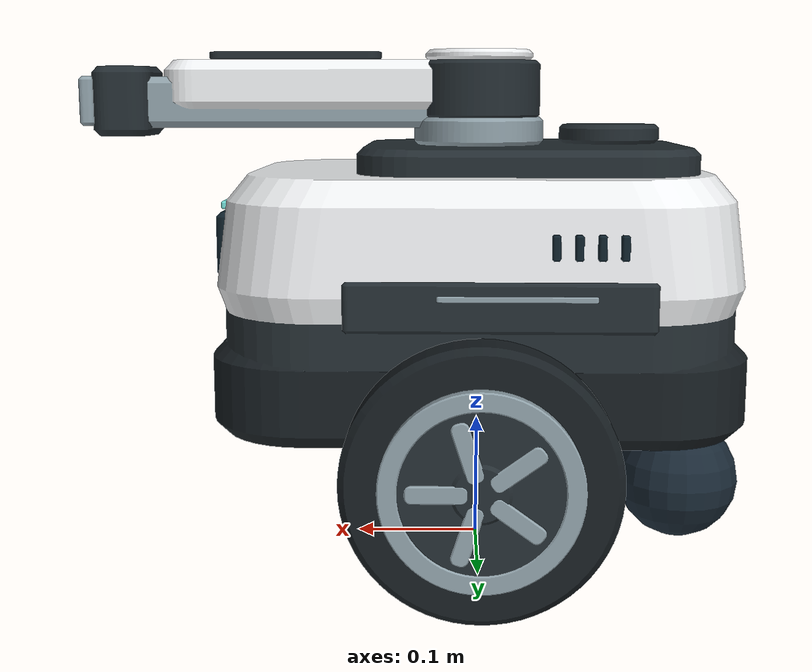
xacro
<?xml version="1.0"?>
<!-- Small mobile manipulator for Gazebo Harmonic. The visual shell is illustrative. -->
<robot name="haetae_reference" xmlns:xacro="http://www.ros.org/wiki/xacro">
  <xacro:arg name="controllers_file" default=""/>
  <xacro:arg name="meshes_dir" default="/workspace/ros/gazebo/meshes"/>

  <material name="graphite"><color rgba="0.10 0.16 0.21 1"/></material>
  <material name="shell_white"><color rgba="0.88 0.94 0.95 1"/></material>
  <material name="sensor_glass"><color rgba="0.035 0.09 0.13 1"/></material>
  <material name="sensor_teal"><color rgba="0.13 0.75 0.78 1"/></material>
  <material name="arm_silver"><color rgba="0.61 0.72 0.76 1"/></material>

  <link name="chassis">
    <visual name="authored_shell"><geometry><mesh filename="file://$(arg meshes_dir)/chassis.dae"/></geometry></visual>
    <collision><origin xyz="0 0 0.20"/><geometry><box size="0.40 0.30 0.20"/></geometry></collision>
    <inertial><origin xyz="0 0 0.20"/><mass value="4"/><inertia ixx="0.05" ixy="0" ixz="0" iyy="0.08" iyz="0" izz="0.08"/></inertial>
  </link>

  <xacro:macro name="wheel" params="side y">
    <link name="${side}_wheel">
    <visual name="authored_shell"><geometry><mesh filename="file://$(arg meshes_dir)/wheel.dae"/></geometry></visual>
      <collision><geometry><cylinder radius="0.10" length="0.04"/></geometry></collision>
      <inertial><mass value="0.25"/><inertia ixx="0.001" ixy="0" ixz="0" iyy="0.001" iyz="0" izz="0.001"/></inertial>
    </link>
    <joint name="${side}_wheel_joint" type="continuous">
      <parent link="chassis"/><child link="${side}_wheel"/>
      <origin xyz="0 ${y} 0.10" rpy="-1.57079632679 0 0"/><axis xyz="0 0 1"/>
      <dynamics damping="0.1"/>
    </joint>
  </xacro:macro>
  <xacro:wheel side="left" y="0.18"/>
  <xacro:wheel side="right" y="-0.18"/>

  <link name="caster">
    <visual><geometry><sphere radius="0.05"/></geometry><material name="graphite"/></visual>
    <collision><geometry><sphere radius="0.05"/></geometry></collision>
    <inertial><mass value="0.05"/><inertia ixx="0.0001" ixy="0" ixz="0" iyy="0.0001" iyz="0" izz="0.0001"/></inertial>
  </link>
  <joint name="caster_joint" type="fixed">
    <parent link="chassis"/><child link="caster"/><origin xyz="-0.17 0 0.05"/>
  </joint>

  <link name="arm">
    <visual name="authored_shell"><geometry><mesh filename="file://$(arg meshes_dir)/arm.dae"/></geometry></visual>
    <collision><origin xyz="0.15 0 0"/><geometry><box size="0.30 0.04 0.04"/></geometry></collision>
    <inertial><origin xyz="0.15 0 0"/><mass value="0.2"/><inertia ixx="0.0001" ixy="0" ixz="0" iyy="0.002" iyz="0" izz="0.002"/></inertial>
  </link>
  <joint name="shoulder" type="revolute">
    <parent link="chassis"/><child link="arm"/><origin xyz="0 0 0.36"/>
    <axis xyz="0 0 1"/><limit lower="-1" upper="1" effort="5" velocity="2"/>
    <dynamics damping="0.1"/>
  </joint>

  <ros2_control name="GazeboSimSystem" type="system">
    <hardware><plugin>gz_ros2_control/GazeboSimSystem</plugin></hardware>
    <joint name="left_wheel_joint">
      <command_interface name="velocity"/><state_interface name="position"/><state_interface name="velocity"/>
    </joint>
    <joint name="right_wheel_joint">
      <command_interface name="velocity"/><state_interface name="position"/><state_interface name="velocity"/>
    </joint>
    <joint name="shoulder">
      <command_interface name="position"><param name="min">-1</param><param name="max">1</param></command_interface>
      <state_interface name="position"><param name="initial_value">0</param></state_interface>
      <state_interface name="velocity"/>
    </joint>
  </ros2_control>

  <gazebo>
    <plugin filename="gz_ros2_control-system" name="gz_ros2_control::GazeboSimROS2ControlPlugin">
      <parameters>$(arg controllers_file)</parameters>
    </plugin>
  </gazebo>
</robot>
